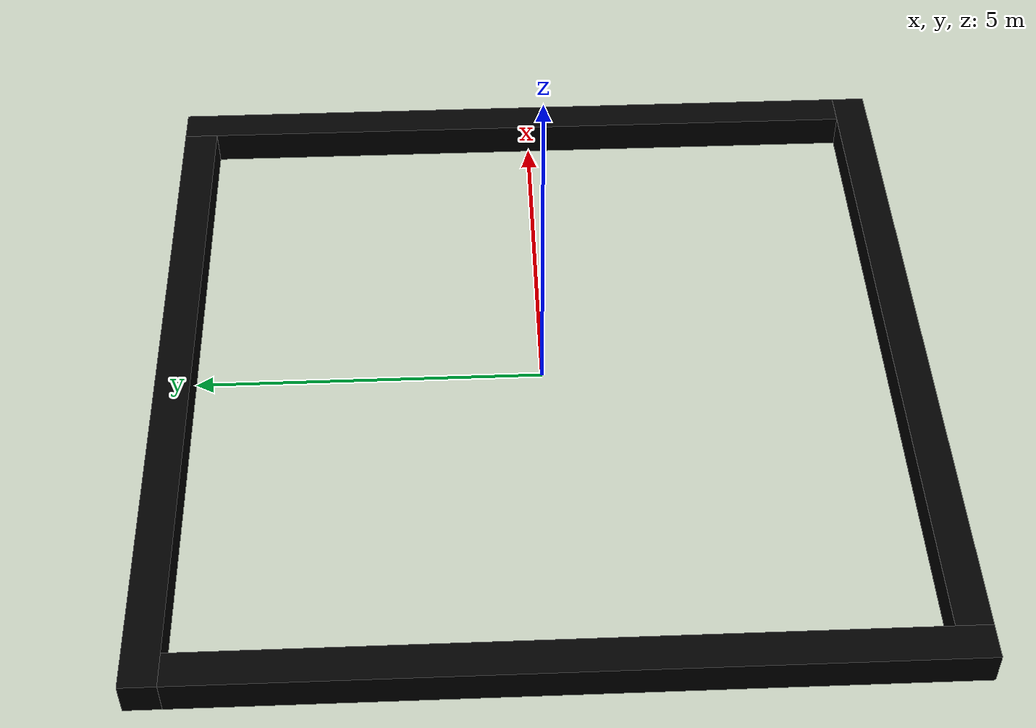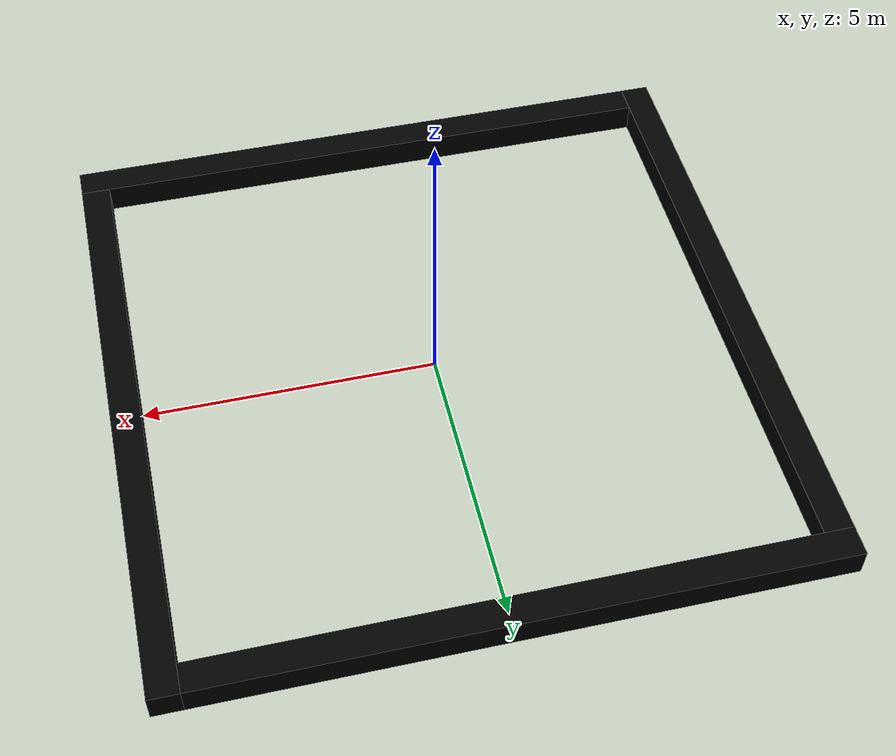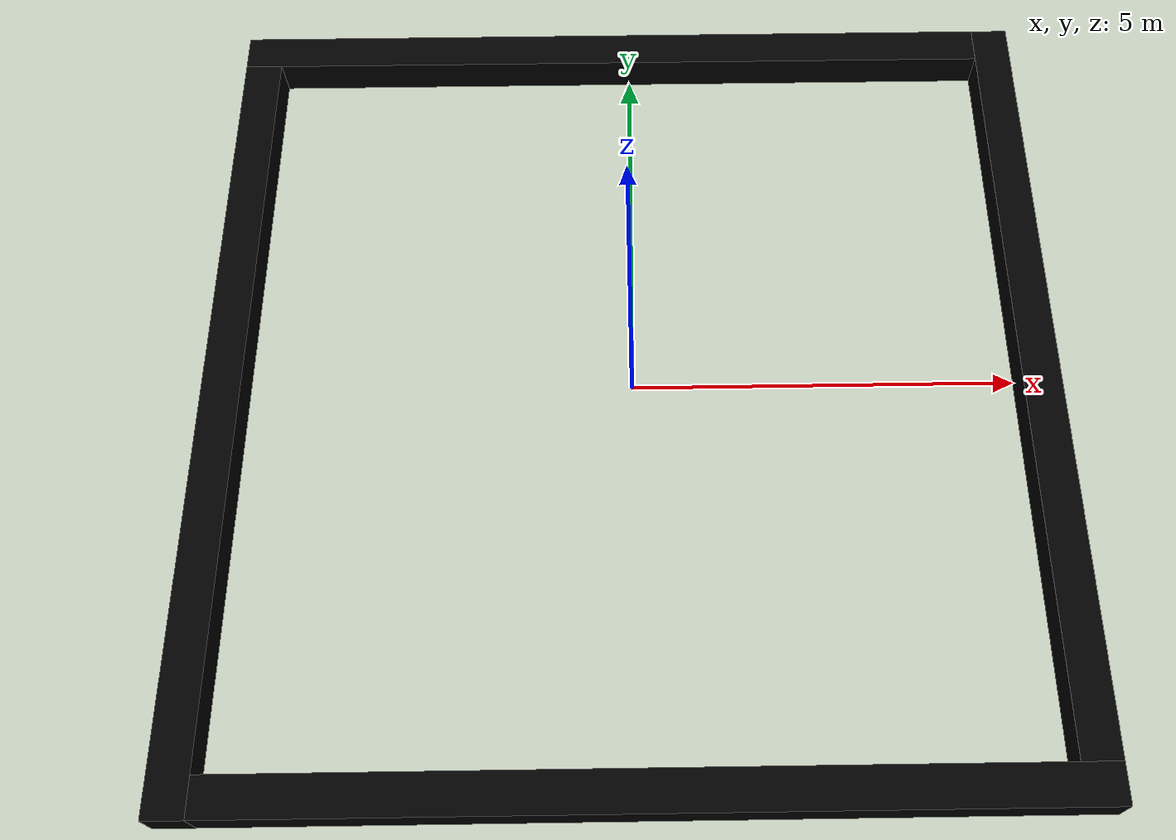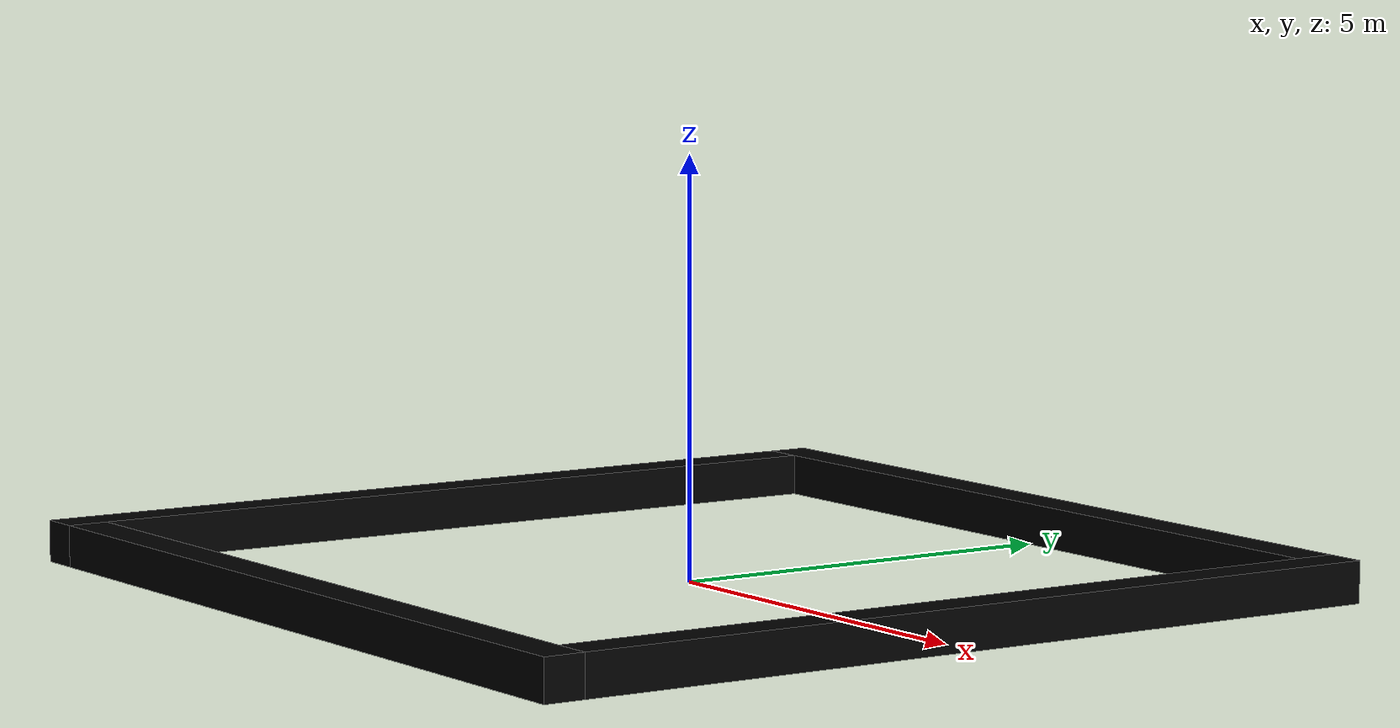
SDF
<?xml version='1.0'?>
<sdf version='1.7'>
  <model name='border'>
    <pose>0 0 0 0 0 0</pose>
    <link name='Outer_Wall_0'>
      <collision name='Wall_0_Collision'>
        <geometry>
          <box>
            <size>10.5 0.5 0.5</size>
          </box>
        </geometry>
        <pose>0 0 0 0 -0 0</pose>
      </collision>
      <visual name='Wall_0_Visual'>
        <pose>0 0 0 0 -0 0</pose>
        <geometry>
          <box>
            <size>10.5 0.5 0.5</size>
          </box>
        </geometry>
        <material>
          <script>
            <uri>model://border/materials/scripts/repeated.material</uri>
            <name>ScreenShot1</name>
          </script>
          <ambient>0 0 0 1</ambient>
        </material>
        <meta>
          <layer>0</layer>
        </meta>
      </visual>
      <pose>5.25 0.25 0.25 0 0 -1.5708</pose>
    </link>
    <link name='Outer_Wall_1'>
      <collision name='Wall_1_Collision'>
        <geometry>
          <box>
            <size>10.5 0.5 0.5</size>
          </box>
        </geometry>
        <pose>0 0 0 0 -0 0</pose>
      </collision>
      <visual name='Wall_1_Visual'>
        <pose>0 0 0 0 -0 0</pose>
        <geometry>
          <box>
            <size>10.5 0.5 0.5</size>
          </box>
        </geometry>
        <material>
          <script>
            <uri>model://border/materials/scripts/repeated.material</uri>
            <name>ScreenShot2</name>
          </script>
          <ambient>0 0 0 1</ambient>
        </material>
        <meta>
          <layer>0</layer>
        </meta>
      </visual>
      <pose>-0.25 5.25 0.25 0 0 0</pose>
    </link>
    <link name='Outer_Wall_2'>
      <collision name='Wall_2_Collision'>
        <geometry>
          <box>
            <size>10.5 0.5 0.5</size>
          </box>
        </geometry>
        <pose>0 0 0 0 -0 0</pose>
      </collision>
      <visual name='Wall_2_Visual'>
        <pose>0 0 0 0 -0 0</pose>
        <geometry>
          <box>
            <size>10.5 0.5 0.5</size>
          </box>
        </geometry>
        <material>
          <script>
            <uri>model://border/materials/scripts/repeated.material</uri>
            <name>LandScape</name>
          </script>
          <ambient>0 0 0 1</ambient>
        </material>
        <meta>
          <layer>0</layer>
        </meta>
      </visual>
      <pose>-5.25 -0.25 0.25 0 0 1.5708</pose>
    </link>
    <link name='Outer_Wall_3'>
      <collision name='Wall_3_Collision'>
        <geometry>
          <box>
            <size>10.5 0.5 0.5</size>
          </box>
        </geometry>
        <pose>0 0 0 0 -0 0</pose>
      </collision>
      <visual name='Wall_3_Visual'>
        <pose>0 0 0 0 -0 0</pose>
        <geometry>
          <box>
            <size>10.5 0.5 0.5</size>
          </box>
        </geometry>
        <material>
          <script>
            <uri>model://border/materials/scripts/repeated.material</uri>
            <name>MessyImg</name>
          </script>
          <ambient>0 0 0 1</ambient>
        </material>
        <meta>
          <layer>0</layer>
        </meta>
      </visual>
      <pose>0.25 -5.25 0.25 0 0 0</pose>
    </link>
    <static>1</static>
  </model>
</sdf>
